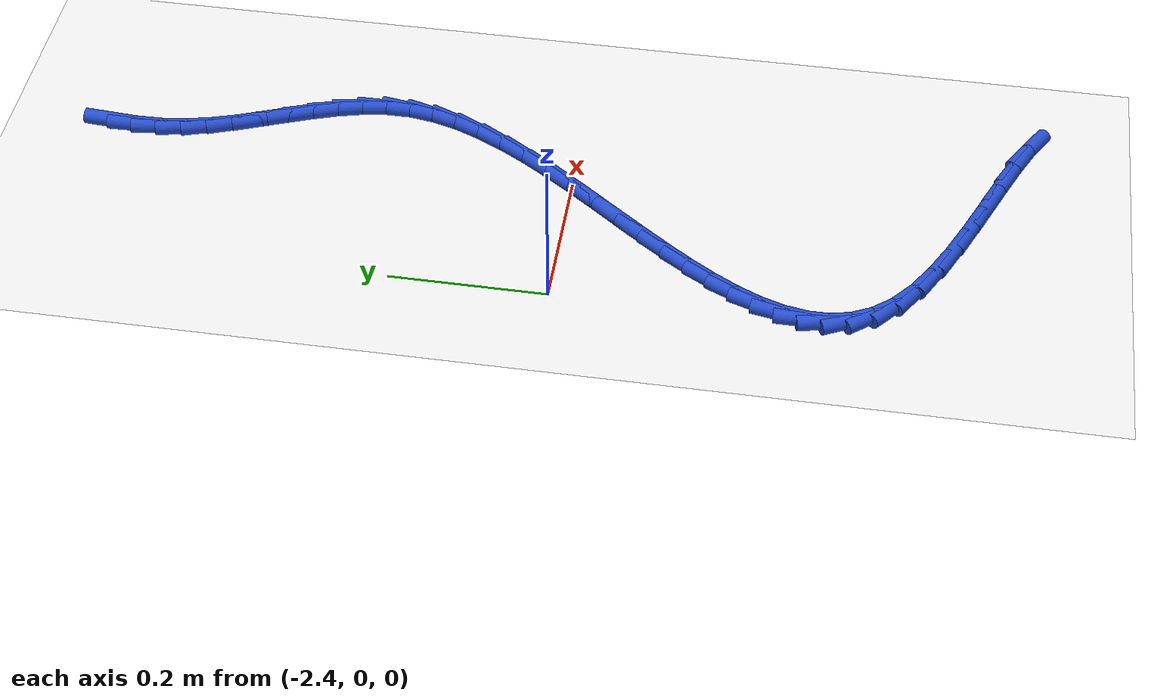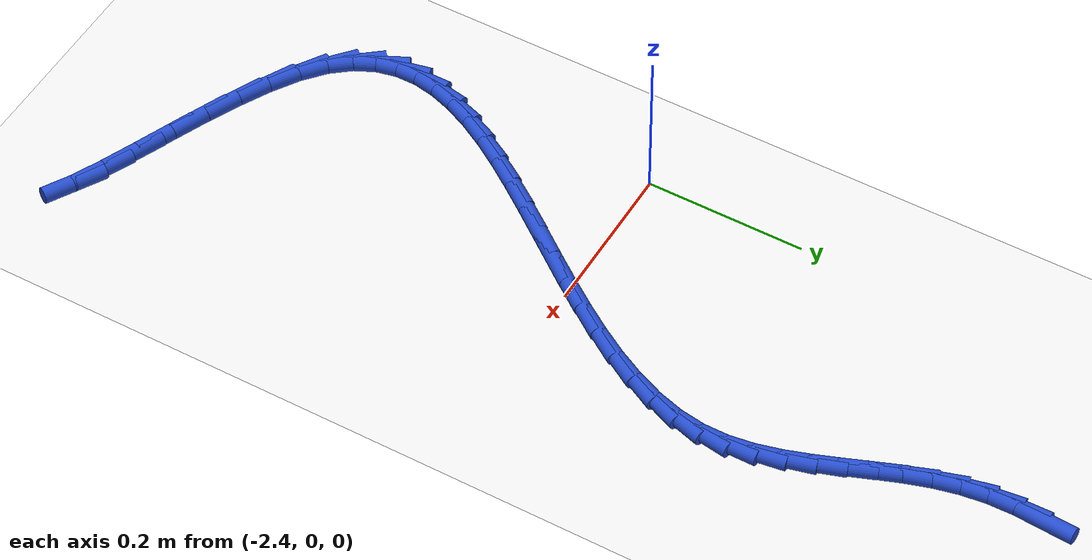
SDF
<sdf version="1.6">
 <world name="default">
  <model name="ground_plane">
   <static>1</static>
   <link name="link">
    <collision name="collision">
     <geometry><plane><normal>0 0 1</normal><size>100 100</size></plane></geometry>
     <surface><friction><ode><mu>100</mu><mu2>50</mu2></ode></friction></surface>
    </collision>
    <visual name="visual">
     <cast_shadows>0</cast_shadows>
     <geometry><plane><normal>0 0 1</normal><size>100 100</size></plane></geometry>
     <material>
      <script><uri>file://media/materials/scripts/gazebo.material</uri><name>Gazebo/WhiteGlow</name></script>
     </material>
    </visual>
   </link>
  </model>
  <model name="line">
   <link name="link_103">
    <pose>-2.1781358187066155 0.6134014376902036 0.01 0 1.57 1.501040282491612</pose>
    <collision name="collision">
     <geometry><cylinder><radius>0.01</radius><length>0.08</length></cylinder></geometry>
    </collision>
    <visual name="visual">
     <material>
      <script><name>Gazebo/Blue</name><uri>file://media/materials/scripts/gazebo.material</uri></script>
     </material>
     <geometry><cylinder><radius>0.01</radius><length>0.08</length></cylinder></geometry>
    </visual>
   </link>
   <link name="link_104">
    <pose>-2.1803864677659424 0.5811892127140652 0.01 0 1.57 -1.5501253160782846</pose>
    <collision name="collision">
     <geometry><cylinder><radius>0.01</radius><length>0.08</length></cylinder></geometry>
    </collision>
    <visual name="visual">
     <material>
      <script><name>Gazebo/Blue</name><uri>file://media/materials/scripts/gazebo.material</uri></script>
     </material>
     <geometry><cylinder><radius>0.01</radius><length>0.08</length></cylinder></geometry>
    </visual>
   </link>
   <link name="link_105">
    <pose>-2.17972318252491 0.5491060806618863 0.01 0 1.57 -1.449498831978645</pose>
    <collision name="collision">
     <geometry><cylinder><radius>0.01</radius><length>0.08</length></cylinder></geometry>
    </collision>
    <visual name="visual">
     <material>
      <script><name>Gazebo/Blue</name><uri>file://media/materials/scripts/gazebo.material</uri></script>
     </material>
     <geometry><cylinder><radius>0.01</radius><length>0.08</length></cylinder></geometry>
    </visual>
   </link>
   <link name="link_106">
    <pose>-2.175833805607132 0.5171987170362525 0.01 0 1.57 -1.343685635497611</pose>
    <collision name="collision">
     <geometry><cylinder><radius>0.01</radius><length>0.08</length></cylinder></geometry>
    </collision>
    <visual name="visual">
     <material>
      <script><name>Gazebo/Blue</name><uri>file://media/materials/scripts/gazebo.material</uri></script>
     </material>
     <geometry><cylinder><radius>0.01</radius><length>0.08</length></cylinder></geometry>
    </visual>
   </link>
   <link name="link_107">
    <pose>-2.168509374326565 0.48550462777589487 0.01 0 1.57 -1.2601381327424073</pose>
    <collision name="collision">
     <geometry><cylinder><radius>0.01</radius><length>0.08</length></cylinder></geometry>
    </collision>
    <visual name="visual">
     <material>
      <script><name>Gazebo/Blue</name><uri>file://media/materials/scripts/gazebo.material</uri></script>
     </material>
     <geometry><cylinder><radius>0.01</radius><length>0.08</length></cylinder></geometry>
    </visual>
   </link>
   <link name="link_108">
    <pose>-2.1583901664344363 0.4539858579175072 0.01 0 1.57 -1.2099507985862494</pose>
    <collision name="collision">
     <geometry><cylinder><radius>0.01</radius><length>0.08</length></cylinder></geometry>
    </collision>
    <visual name="visual">
     <material>
      <script><name>Gazebo/Blue</name><uri>file://media/materials/scripts/gazebo.material</uri></script>
     </material>
     <geometry><cylinder><radius>0.01</radius><length>0.08</length></cylinder></geometry>
    </visual>
   </link>
   <link name="link_109">
    <pose>-2.146533818346978 0.4225673672861614 0.01 0 1.57 -1.1909615013359194</pose>
    <collision name="collision">
     <geometry><cylinder><radius>0.01</radius><length>0.08</length></cylinder></geometry>
    </collision>
    <visual name="visual">
     <material>
      <script><name>Gazebo/Blue</name><uri>file://media/materials/scripts/gazebo.material</uri></script>
     </material>
     <geometry><cylinder><radius>0.01</radius><length>0.08</length></cylinder></geometry>
    </visual>
   </link>
   <link name="link_110">
    <pose>-2.134000863716599 0.3911738582674038 0.01 0 1.57 -1.2020927605549199</pose>
    <collision name="collision">
     <geometry><cylinder><radius>0.01</radius><length>0.08</length></cylinder></geometry>
    </collision>
    <visual name="visual">
     <material>
      <script><name>Gazebo/Blue</name><uri>file://media/materials/scripts/gazebo.material</uri></script>
     </material>
     <geometry><cylinder><radius>0.01</radius><length>0.08</length></cylinder></geometry>
    </visual>
   </link>
   <link name="link_111">
    <pose>-2.1218518361957073 0.3597300332467801 0.01 0 1.57 -1.243882676673938</pose>
    <collision name="collision">
     <geometry><cylinder><radius>0.01</radius><length>0.08</length></cylinder></geometry>
    </collision>
    <visual name="visual">
     <material>
      <script><name>Gazebo/Blue</name><uri>file://media/materials/scripts/gazebo.material</uri></script>
     </material>
     <geometry><cylinder><radius>0.01</radius><length>0.08</length></cylinder></geometry>
    </visual>
   </link>
   <link name="link_112">
    <pose>-2.1111472694367137 0.3281605946098371 0.01 0 1.57 -1.3182192578153318</pose>
    <collision name="collision">
     <geometry><cylinder><radius>0.01</radius><length>0.08</length></cylinder></geometry>
    </collision>
    <visual name="visual">
     <material>
      <script><name>Gazebo/Blue</name><uri>file://media/materials/scripts/gazebo.material</uri></script>
     </material>
     <geometry><cylinder><radius>0.01</radius><length>0.08</length></cylinder></geometry>
    </visual>
   </link>
   <link name="link_113">
    <pose>-2.102947697092025 0.29639024474212056 0.01 0 1.57 -1.4271882705873131</pose>
    <collision name="collision">
     <geometry><cylinder><radius>0.01</radius><length>0.08</length></cylinder></geometry>
    </collision>
    <visual name="visual">
     <material>
      <script><name>Gazebo/Blue</name><uri>file://media/materials/scripts/gazebo.material</uri></script>
     </material>
     <geometry><cylinder><radius>0.01</radius><length>0.08</length></cylinder></geometry>
    </visual>
   </link>
   <link name="link_114">
    <pose>-2.0983136528140514 0.2643436860291767 0.01 0 1.57 -1.5704857346898395</pose>
    <collision name="collision">
     <geometry><cylinder><radius>0.01</radius><length>0.08</length></cylinder></geometry>
    </collision>
    <visual name="visual">
     <material>
      <script><name>Gazebo/Blue</name><uri>file://media/materials/scripts/gazebo.material</uri></script>
     </material>
     <geometry><cylinder><radius>0.01</radius><length>0.08</length></cylinder></geometry>
    </visual>
   </link>
   <link name="link_115">
    <pose>-2.0983035902888885 0.23194580895670402 0.01 0 1.57 1.4134668840764688</pose>
    <collision name="collision">
     <geometry><cylinder><radius>0.01</radius><length>0.08</length></cylinder></geometry>
    </collision>
    <visual name="visual">
     <material>
      <script><name>Gazebo/Blue</name><uri>file://media/materials/scripts/gazebo.material</uri></script>
     </material>
     <geometry><cylinder><radius>0.01</radius><length>0.08</length></cylinder></geometry>
    </visual>
   </link>
   <link name="link_116">
    <pose>-2.1035040855195013 0.19916417790535196 0.01 0 1.57 1.2793716797561585</pose>
    <collision name="collision">
     <geometry><cylinder><radius>0.01</radius><length>0.08</length></cylinder></geometry>
    </collision>
    <visual name="visual">
     <material>
      <script><name>Gazebo/Blue</name><uri>file://media/materials/scripts/gazebo.material</uri></script>
     </material>
     <geometry><cylinder><radius>0.01</radius><length>0.08</length></cylinder></geometry>
    </visual>
   </link>
   <link name="link_117">
    <pose>-2.113433285057691 0.166062979850549 0.01 0 1.57 1.1725348321930893</pose>
    <collision name="collision">
     <geometry><cylinder><radius>0.01</radius><length>0.08</length></cylinder></geometry>
    </collision>
    <visual name="visual">
     <material>
      <script><name>Gazebo/Blue</name><uri>file://media/materials/scripts/gazebo.material</uri></script>
     </material>
     <geometry><cylinder><radius>0.01</radius><length>0.08</length></cylinder></geometry>
    </visual>
   </link>
   <link name="link_118">
    <pose>-2.127462319641528 0.1327196970296431 0.01 0 1.57 1.0894956766221262</pose>
    <collision name="collision">
     <geometry><cylinder><radius>0.01</radius><length>0.08</length></cylinder></geometry>
    </collision>
    <visual name="visual">
     <material>
      <script><name>Gazebo/Blue</name><uri>file://media/materials/scripts/gazebo.material</uri></script>
     </material>
     <geometry><cylinder><radius>0.01</radius><length>0.08</length></cylinder></geometry>
    </visual>
   </link>
   <link name="link_119">
    <pose>-2.1449623200090824 0.09921181167998233 0.01 0 1.57 1.0263355289030247</pose>
    <collision name="collision">
     <geometry><cylinder><radius>0.01</radius><length>0.08</length></cylinder></geometry>
    </collision>
    <visual name="visual">
     <material>
      <script><name>Gazebo/Blue</name><uri>file://media/materials/scripts/gazebo.material</uri></script>
     </material>
     <geometry><cylinder><radius>0.01</radius><length>0.08</length></cylinder></geometry>
    </visual>
   </link>
   <link name="link_120">
    <pose>-2.165304416898425 0.06561680603891529 0.01 0 1.57 0.9796641369342572</pose>
    <collision name="collision">
     <geometry><cylinder><radius>0.01</radius><length>0.08</length></cylinder></geometry>
    </collision>
    <visual name="visual">
     <material>
      <script><name>Gazebo/Blue</name><uri>file://media/materials/scripts/gazebo.material</uri></script>
     </material>
     <geometry><cylinder><radius>0.01</radius><length>0.08</length></cylinder></geometry>
    </visual>
   </link>
   <link name="link_121">
    <pose>-2.187859741047627 0.03201216234378906 0.01 0 1.57 0.9469070886884242</pose>
    <collision name="collision">
     <geometry><cylinder><radius>0.01</radius><length>0.08</length></cylinder></geometry>
    </collision>
    <visual name="visual">
     <material>
      <script><name>Gazebo/Blue</name><uri>file://media/materials/scripts/gazebo.material</uri></script>
     </material>
     <geometry><cylinder><radius>0.01</radius><length>0.08</length></cylinder></geometry>
    </visual>
   </link>
   <link name="link_122">
    <pose>-2.211999423194759 -0.0015246371680477256 0.01 0 1.57 0.9263076058193914</pose>
    <collision name="collision">
     <geometry><cylinder><radius>0.01</radius><length>0.08</length></cylinder></geometry>
    </collision>
    <visual name="visual">
     <material>
      <script><name>Gazebo/Blue</name><uri>file://media/materials/scripts/gazebo.material</uri></script>
     </material>
     <geometry><cylinder><radius>0.01</radius><length>0.08</length></cylinder></geometry>
    </visual>
   </link>
   <link name="link_123">
    <pose>-2.2370945940778904 -0.03491611025924714 0.01 0 1.57 0.9168563905810415</pose>
    <collision name="collision">
     <geometry><cylinder><radius>0.01</radius><length>0.08</length></cylinder></geometry>
    </collision>
    <visual name="visual">
     <material>
      <script><name>Gazebo/Blue</name><uri>file://media/materials/scripts/gazebo.material</uri></script>
     </material>
     <geometry><cylinder><radius>0.01</radius><length>0.08</length></cylinder></geometry>
    </visual>
   </link>
   <link name="link_124">
    <pose>-2.2625163844350933 -0.068084774692461 0.01 0 1.57 0.9182396104781797</pose>
    <collision name="collision">
     <geometry><cylinder><radius>0.01</radius><length>0.08</length></cylinder></geometry>
    </collision>
    <visual name="visual">
     <material>
      <script><name>Gazebo/Blue</name><uri>file://media/materials/scripts/gazebo.material</uri></script>
     </material>
     <geometry><cylinder><radius>0.01</radius><length>0.08</length></cylinder></geometry>
    </visual>
   </link>
   <link name="link_125">
    <pose>-2.2876359250044365 -0.10095314823034128 0.01 0 1.57 0.9308409663008762</pose>
    <collision name="collision">
     <geometry><cylinder><radius>0.01</radius><length>0.08</length></cylinder></geometry>
    </collision>
    <visual name="visual">
     <material>
      <script><name>Gazebo/Blue</name><uri>file://media/materials/scripts/gazebo.material</uri></script>
     </material>
     <geometry><cylinder><radius>0.01</radius><length>0.08</length></cylinder></geometry>
    </visual>
   </link>
   <link name="link_126">
    <pose>-2.3118243465239923 -0.1334437486355399 0.01 0 1.57 0.9558157535738064</pose>
    <collision name="collision">
     <geometry><cylinder><radius>0.01</radius><length>0.08</length></cylinder></geometry>
    </collision>
    <visual name="visual">
     <material>
      <script><name>Gazebo/Blue</name><uri>file://media/materials/scripts/gazebo.material</uri></script>
     </material>
     <geometry><cylinder><radius>0.01</radius><length>0.08</length></cylinder></geometry>
    </visual>
   </link>
   <link name="link_127">
    <pose>-2.3344527797318304 -0.16547909367070884 0.01 0 1.57 0.9952498753062288</pose>
    <collision name="collision">
     <geometry><cylinder><radius>0.01</radius><length>0.08</length></cylinder></geometry>
    </collision>
    <visual name="visual">
     <material>
      <script><name>Gazebo/Blue</name><uri>file://media/materials/scripts/gazebo.material</uri></script>
     </material>
     <geometry><cylinder><radius>0.01</radius><length>0.08</length></cylinder></geometry>
    </visual>
   </link>
   <link name="link_128">
    <pose>-2.354892355366021 -0.19698170109849994 0.01 0 1.57 1.0524056465707035</pose>
    <collision name="collision">
     <geometry><cylinder><radius>0.01</radius><length>0.08</length></cylinder></geometry>
    </collision>
    <visual name="visual">
     <material>
      <script><name>Gazebo/Blue</name><uri>file://media/materials/scripts/gazebo.material</uri></script>
     </material>
     <geometry><cylinder><radius>0.01</radius><length>0.08</length></cylinder></geometry>
    </visual>
   </link>
   <link name="link_129">
    <pose>-2.3725142041646357 -0.22787408868156522 0.01 0 1.57 1.1320036835025855</pose>
    <collision name="collision">
     <geometry><cylinder><radius>0.01</radius><length>0.08</length></cylinder></geometry>
    </collision>
    <visual name="visual">
     <material>
      <script><name>Gazebo/Blue</name><uri>file://media/materials/scripts/gazebo.material</uri></script>
     </material>
     <geometry><cylinder><radius>0.01</radius><length>0.08</length></cylinder></geometry>
    </visual>
   </link>
   <link name="link_130">
    <pose>-2.3866894568657444 -0.25807877418255654 0.01 0 1.57 1.2403091955027543</pose>
    <collision name="collision">
     <geometry><cylinder><radius>0.01</radius><length>0.08</length></cylinder></geometry>
    </collision>
    <visual name="visual">
     <material>
      <script><name>Gazebo/Blue</name><uri>file://media/materials/scripts/gazebo.material</uri></script>
     </material>
     <geometry><cylinder><radius>0.01</radius><length>0.08</length></cylinder></geometry>
    </visual>
   </link>
   <link name="link_131">
    <pose>-2.3967892442074183 -0.2875182753641259 0.01 0 1.57 1.3843153834295052</pose>
    <collision name="collision">
     <geometry><cylinder><radius>0.01</radius><length>0.08</length></cylinder></geometry>
    </collision>
    <visual name="visual">
     <material>
      <script><name>Gazebo/Blue</name><uri>file://media/materials/scripts/gazebo.material</uri></script>
     </material>
     <geometry><cylinder><radius>0.01</radius><length>0.08</length></cylinder></geometry>
    </visual>
   </link>
   <link name="link_132">
    <pose>-2.4021846969277263 -0.3161151099889251 0.01 0 1.57 1.5685471871243823</pose>
    <collision name="collision">
     <geometry><cylinder><radius>0.01</radius><length>0.08</length></cylinder></geometry>
    </collision>
    <visual name="visual">
     <material>
      <script><name>Gazebo/Blue</name><uri>file://media/materials/scripts/gazebo.material</uri></script>
     </material>
     <geometry><cylinder><radius>0.01</radius><length>0.08</length></cylinder></geometry>
    </visual>
   </link>
   <link name="link_133">
    <pose>-2.402246945764741 -0.3437917958196063 0.01 0 1.57 -1.353158263202277</pose>
    <collision name="collision">
     <geometry><cylinder><radius>0.01</radius><length>0.08</length></cylinder></geometry>
    </collision>
    <visual name="visual">
     <material>
      <script><name>Gazebo/Blue</name><uri>file://media/materials/scripts/gazebo.material</uri></script>
     </material>
     <geometry><cylinder><radius>0.01</radius><length>0.08</length></cylinder></geometry>
    </visual>
   </link>
   <link name="link_134">
    <pose>-2.3963471214565324 -0.3704708506188212 0.01 0 1.57 -1.1169195417416098</pose>
    <collision name="collision">
     <geometry><cylinder><radius>0.01</radius><length>0.08</length></cylinder></geometry>
    </collision>
    <visual name="visual">
     <material>
      <script><name>Gazebo/Blue</name><uri>file://media/materials/scripts/gazebo.material</uri></script>
     </material>
     <geometry><cylinder><radius>0.01</radius><length>0.08</length></cylinder></geometry>
    </visual>
   </link>
   <link name="link_135">
    <pose>-2.3838563547411704 -0.39607479214922187 0.01 0 1.57 -0.8923382889107209</pose>
    <collision name="collision">
     <geometry><cylinder><radius>0.01</radius><length>0.08</length></cylinder></geometry>
    </collision>
    <visual name="visual">
     <material>
      <script><name>Gazebo/Blue</name><uri>file://media/materials/scripts/gazebo.material</uri></script>
     </material>
     <geometry><cylinder><radius>0.01</radius><length>0.08</length></cylinder></geometry>
    </visual>
   </link>
   <link name="link_136">
    <pose>-2.3641457763567266 -0.42052613817346024 0.01 0 1.57 -0.7005892412136422</pose>
    <collision name="collision">
     <geometry><cylinder><radius>0.01</radius><length>0.08</length></cylinder></geometry>
    </collision>
    <visual name="visual">
     <material>
      <script><name>Gazebo/Blue</name><uri>file://media/materials/scripts/gazebo.material</uri></script>
     </material>
     <geometry><cylinder><radius>0.01</radius><length>0.08</length></cylinder></geometry>
    </visual>
   </link>
   <link name="link_137">
    <pose>-2.336608028646771 -0.44374861504413066 0.01 0 1.57 -0.5621387185653252</pose>
    <collision name="collision">
     <geometry><cylinder><radius>0.01</radius><length>0.08</length></cylinder></geometry>
    </collision>
    <visual name="visual">
     <material>
      <script><name>Gazebo/Blue</name><uri>file://media/materials/scripts/gazebo.material</uri></script>
     </material>
     <geometry><cylinder><radius>0.01</radius><length>0.08</length></cylinder></geometry>
    </visual>
   </link>
   <link name="link_138">
    <pose>-2.301718348912366 -0.46572677271797885 0.01 0 1.57 -0.47762657435841593</pose>
    <collision name="collision">
     <geometry><cylinder><radius>0.01</radius><length>0.08</length></cylinder></geometry>
    </collision>
    <visual name="visual">
     <material>
      <script><name>Gazebo/Blue</name><uri>file://media/materials/scripts/gazebo.material</uri></script>
     </material>
     <geometry><cylinder><radius>0.01</radius><length>0.08</length></cylinder></geometry>
    </visual>
   </link>
   <link name="link_139">
    <pose>-2.2615201638682736 -0.48653326698622895 0.01 0 1.57 -0.42689881913067645</pose>
    <collision name="collision">
     <geometry><cylinder><radius>0.01</radius><length>0.08</length></cylinder></geometry>
    </collision>
    <visual name="visual">
     <material>
      <script><name>Gazebo/Blue</name><uri>file://media/materials/scripts/gazebo.material</uri></script>
     </material>
     <geometry><cylinder><radius>0.01</radius><length>0.08</length></cylinder></geometry>
    </visual>
   </link>
   <link name="link_140">
    <pose>-2.2181797306986826 -0.5062476546438446 0.01 0 1.57 -0.39933275652692213</pose>
    <collision name="collision">
     <geometry><cylinder><radius>0.01</radius><length>0.08</length></cylinder></geometry>
    </collision>
    <visual name="visual">
     <material>
      <script><name>Gazebo/Blue</name><uri>file://media/materials/scripts/gazebo.material</uri></script>
     </material>
     <geometry><cylinder><radius>0.01</radius><length>0.08</length></cylinder></geometry>
    </visual>
   </link>
   <link name="link_141">
    <pose>-2.173863306587781 -0.5249494924857896 0.01 0 1.57 -0.39082541229693246</pose>
    <collision name="collision">
     <geometry><cylinder><radius>0.01</radius><length>0.08</length></cylinder></geometry>
    </collision>
    <visual name="visual">
     <material>
      <script><name>Gazebo/Blue</name><uri>file://media/materials/scripts/gazebo.material</uri></script>
     </material>
     <geometry><cylinder><radius>0.01</radius><length>0.08</length></cylinder></geometry>
    </visual>
   </link>
   <link name="link_142">
    <pose>-2.1307371487197577 -0.5427183373070279 0.01 0 1.57 -0.40215417237886164</pose>
    <collision name="collision">
     <geometry><cylinder><radius>0.01</radius><length>0.08</length></cylinder></geometry>
    </collision>
    <visual name="visual">
     <material>
      <script><name>Gazebo/Blue</name><uri>file://media/materials/scripts/gazebo.material</uri></script>
     </material>
     <geometry><cylinder><radius>0.01</radius><length>0.08</length></cylinder></geometry>
    </visual>
   </link>
   <link name="link_143">
    <pose>-2.090967514278801 -0.5596337459025231 0.01 0 1.57 -0.4404487232405301</pose>
    <collision name="collision">
     <geometry><cylinder><radius>0.01</radius><length>0.08</length></cylinder></geometry>
    </collision>
    <visual name="visual">
     <material>
      <script><name>Gazebo/Blue</name><uri>file://media/materials/scripts/gazebo.material</uri></script>
     </material>
     <geometry><cylinder><radius>0.01</radius><length>0.08</length></cylinder></geometry>
    </visual>
   </link>
   <link name="link_144">
    <pose>-2.0567206604490975 -0.5757752750672389 0.01 0 1.57 -0.5268134291128677</pose>
    <collision name="collision">
     <geometry><cylinder><radius>0.01</radius><length>0.08</length></cylinder></geometry>
    </collision>
    <visual name="visual">
     <material>
      <script><name>Gazebo/Blue</name><uri>file://media/materials/scripts/gazebo.material</uri></script>
     </material>
     <geometry><cylinder><radius>0.01</radius><length>0.08</length></cylinder></geometry>
    </visual>
   </link>
  </model>
 </world>
</sdf>
